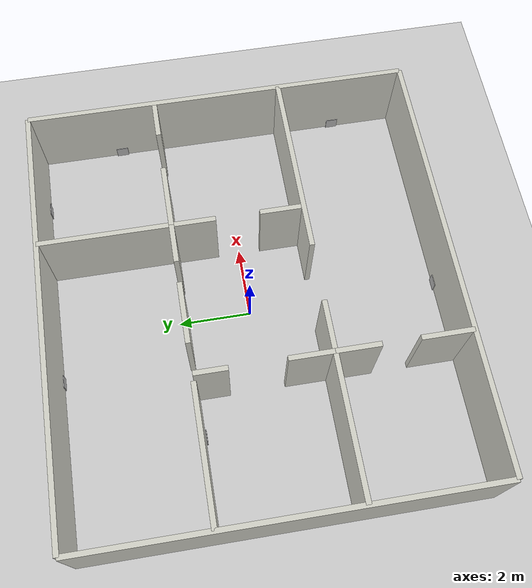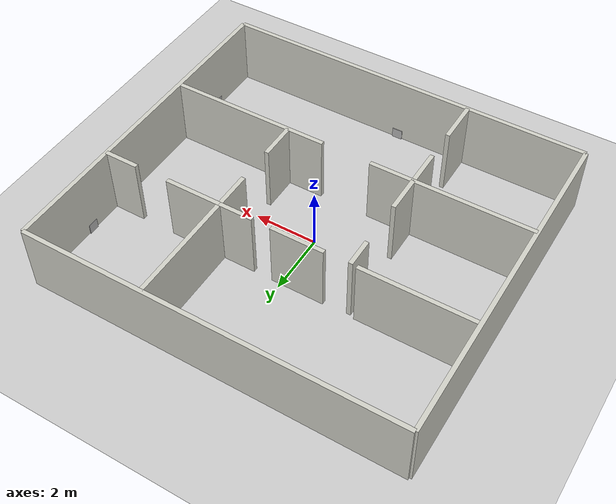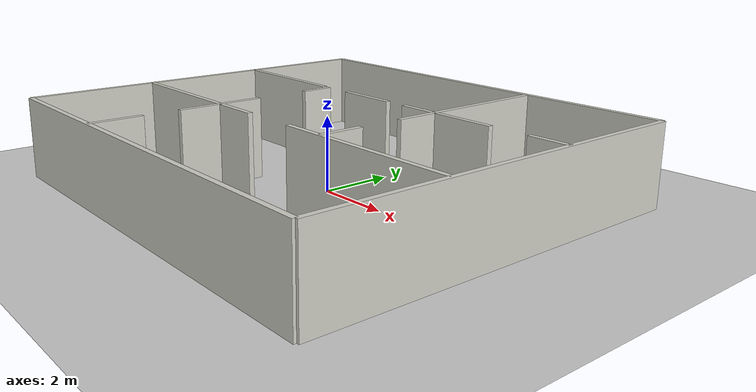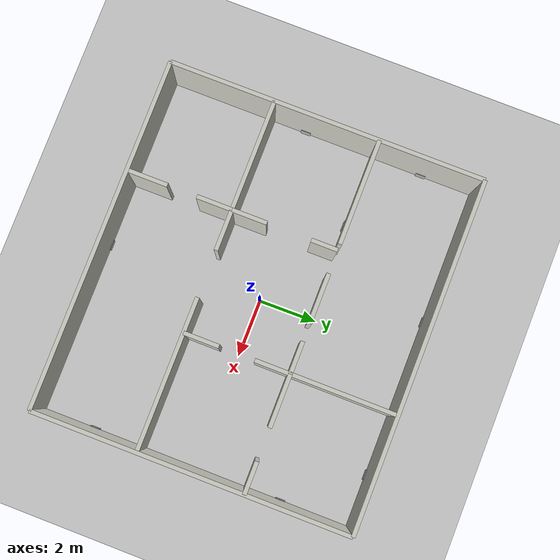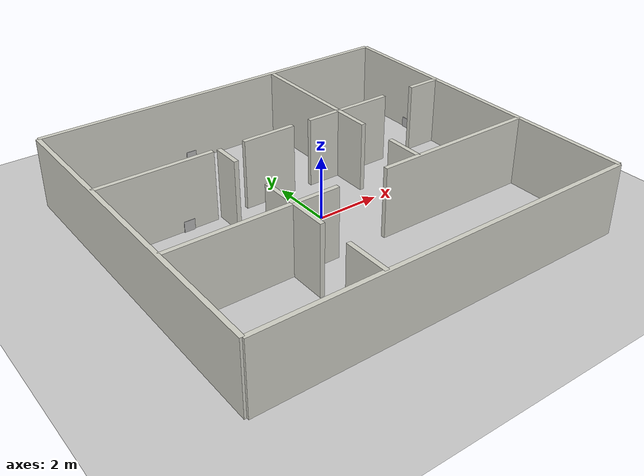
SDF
<?xml version='1.0'?>
<sdf version='1.6'>
  <world name='event_fair_world'>
    <physics type='ode'>
      <real_time_update_rate>1000</real_time_update_rate>
      <max_step_size>0.001</max_step_size>
    </physics>

    <include>
      <uri>model://sun</uri>
    </include>

    <include>
      <uri>model://ground_plane</uri>
    </include>

    <model name='event_fair_building'>
      <static>true</static>
      <link name='outer_north'>
        <pose>0 5.4 1.1 0 0 0</pose>
        <collision name='collision'>
          <geometry>
            <box><size>12 0.14 2.2</size></box>
          </geometry>
        </collision>
        <visual name='visual'>
          <geometry>
            <box><size>12 0.14 2.2</size></box>
          </geometry>
          <material>
            <ambient>0.82 0.82 0.78 1</ambient>
            <diffuse>0.82 0.82 0.78 1</diffuse>
          </material>
        </visual>
      </link>
      <link name='outer_south'>
        <pose>0 -5.4 1.1 0 0 0</pose>
        <collision name='collision'>
          <geometry>
            <box><size>12 0.14 2.2</size></box>
          </geometry>
        </collision>
        <visual name='visual'>
          <geometry>
            <box><size>12 0.14 2.2</size></box>
          </geometry>
          <material>
            <ambient>0.82 0.82 0.78 1</ambient>
            <diffuse>0.82 0.82 0.78 1</diffuse>
          </material>
        </visual>
      </link>
      <link name='outer_west'>
        <pose>-6 0 1.1 0 0 0</pose>
        <collision name='collision'>
          <geometry>
            <box><size>0.14 10.8 2.2</size></box>
          </geometry>
        </collision>
        <visual name='visual'>
          <geometry>
            <box><size>0.14 10.8 2.2</size></box>
          </geometry>
          <material>
            <ambient>0.82 0.82 0.78 1</ambient>
            <diffuse>0.82 0.82 0.78 1</diffuse>
          </material>
        </visual>
      </link>
      <link name='outer_east'>
        <pose>6 0 1.1 0 0 0</pose>
        <collision name='collision'>
          <geometry>
            <box><size>0.14 10.8 2.2</size></box>
          </geometry>
        </collision>
        <visual name='visual'>
          <geometry>
            <box><size>0.14 10.8 2.2</size></box>
          </geometry>
          <material>
            <ambient>0.82 0.82 0.78 1</ambient>
            <diffuse>0.82 0.82 0.78 1</diffuse>
          </material>
        </visual>
      </link>
      <link name='left_divider_bottom_lower'>
        <pose>-2.2 -4.7 1.1 0 0 0</pose>
        <collision name='collision'>
          <geometry>
            <box><size>0.14 1.4 2.2</size></box>
          </geometry>
        </collision>
        <visual name='visual'>
          <geometry>
            <box><size>0.14 1.4 2.2</size></box>
          </geometry>
          <material>
            <ambient>0.82 0.82 0.78 1</ambient>
            <diffuse>0.82 0.82 0.78 1</diffuse>
          </material>
        </visual>
      </link>
      <link name='left_divider_bottom_upper'>
        <pose>-2.2 -2.4 1.1 0 0 0</pose>
        <collision name='collision'>
          <geometry>
            <box><size>0.14 1.2 2.2</size></box>
          </geometry>
        </collision>
        <visual name='visual'>
          <geometry>
            <box><size>0.14 1.2 2.2</size></box>
          </geometry>
          <material>
            <ambient>0.82 0.82 0.78 1</ambient>
            <diffuse>0.82 0.82 0.78 1</diffuse>
          </material>
        </visual>
      </link>
      <link name='left_divider_middle_lower'>
        <pose>-2.2 -1.2 1.1 0 0 0</pose>
        <collision name='collision'>
          <geometry>
            <box><size>0.14 1.2 2.2</size></box>
          </geometry>
        </collision>
        <visual name='visual'>
          <geometry>
            <box><size>0.14 1.2 2.2</size></box>
          </geometry>
          <material>
            <ambient>0.82 0.82 0.78 1</ambient>
            <diffuse>0.82 0.82 0.78 1</diffuse>
          </material>
        </visual>
      </link>
      <link name='left_divider_middle_upper'>
        <pose>-2.2 1.35 1.1 0 0 0</pose>
        <collision name='collision'>
          <geometry>
            <box><size>0.14 0.9 2.2</size></box>
          </geometry>
        </collision>
        <visual name='visual'>
          <geometry>
            <box><size>0.14 0.9 2.2</size></box>
          </geometry>
          <material>
            <ambient>0.82 0.82 0.78 1</ambient>
            <diffuse>0.82 0.82 0.78 1</diffuse>
          </material>
        </visual>
      </link>
      <link name='right_divider_middle_lower'>
        <pose>2 -1.2 1.1 0 0 0</pose>
        <collision name='collision'>
          <geometry>
            <box><size>0.14 1.2 2.2</size></box>
          </geometry>
        </collision>
        <visual name='visual'>
          <geometry>
            <box><size>0.14 1.2 2.2</size></box>
          </geometry>
          <material>
            <ambient>0.82 0.82 0.78 1</ambient>
            <diffuse>0.82 0.82 0.78 1</diffuse>
          </material>
        </visual>
      </link>
      <link name='right_divider_middle_upper'>
        <pose>2 1.2 1.1 0 0 0</pose>
        <collision name='collision'>
          <geometry>
            <box><size>0.14 1.2 2.2</size></box>
          </geometry>
        </collision>
        <visual name='visual'>
          <geometry>
            <box><size>0.14 1.2 2.2</size></box>
          </geometry>
          <material>
            <ambient>0.82 0.82 0.78 1</ambient>
            <diffuse>0.82 0.82 0.78 1</diffuse>
          </material>
        </visual>
      </link>
      <link name='right_divider_top_solid'>
        <pose>2 3.6 1.1 0 0 0</pose>
        <collision name='collision'>
          <geometry>
            <box><size>0.14 3.6 2.2</size></box>
          </geometry>
        </collision>
        <visual name='visual'>
          <geometry>
            <box><size>0.14 3.6 2.2</size></box>
          </geometry>
          <material>
            <ambient>0.82 0.82 0.78 1</ambient>
            <diffuse>0.82 0.82 0.78 1</diffuse>
          </material>
        </visual>
      </link>
      <link name='south_divider_left_solid'>
        <pose>-4.1 -1.8 1.1 0 0 0</pose>
        <collision name='collision'>
          <geometry>
            <box><size>3.8 0.14 2.2</size></box>
          </geometry>
        </collision>
        <visual name='visual'>
          <geometry>
            <box><size>3.8 0.14 2.2</size></box>
          </geometry>
          <material>
            <ambient>0.82 0.82 0.78 1</ambient>
            <diffuse>0.82 0.82 0.78 1</diffuse>
          </material>
        </visual>
      </link>
      <link name='south_divider_center_left'>
        <pose>-1.5 -1.8 1.1 0 0 0</pose>
        <collision name='collision'>
          <geometry>
            <box><size>1.4 0.14 2.2</size></box>
          </geometry>
        </collision>
        <visual name='visual'>
          <geometry>
            <box><size>1.4 0.14 2.2</size></box>
          </geometry>
          <material>
            <ambient>0.82 0.82 0.78 1</ambient>
            <diffuse>0.82 0.82 0.78 1</diffuse>
          </material>
        </visual>
      </link>
      <link name='south_divider_center_right'>
        <pose>3.4 -1.8 1.1 0 0 0</pose>
        <collision name='collision'>
          <geometry>
            <box><size>5.2 0.14 2.2</size></box>
          </geometry>
        </collision>
        <visual name='visual'>
          <geometry>
            <box><size>5.2 0.14 2.2</size></box>
          </geometry>
          <material>
            <ambient>0.82 0.82 0.78 1</ambient>
            <diffuse>0.82 0.82 0.78 1</diffuse>
          </material>
        </visual>
      </link>
      <link name='north_divider_left'>
        <pose>-4.2 1.8 1.1 0 0 0</pose>
        <collision name='collision'>
          <geometry>
            <box><size>3.6 0.14 2.2</size></box>
          </geometry>
        </collision>
        <visual name='visual'>
          <geometry>
            <box><size>3.6 0.14 2.2</size></box>
          </geometry>
          <material>
            <ambient>0.82 0.82 0.78 1</ambient>
            <diffuse>0.82 0.82 0.78 1</diffuse>
          </material>
        </visual>
      </link>
      <link name='north_divider_center_left'>
        <pose>-0.55 1.8 1.1 0 0 0</pose>
        <collision name='collision'>
          <geometry>
            <box><size>1.7 0.14 2.2</size></box>
          </geometry>
        </collision>
        <visual name='visual'>
          <geometry>
            <box><size>1.7 0.14 2.2</size></box>
          </geometry>
          <material>
            <ambient>0.82 0.82 0.78 1</ambient>
            <diffuse>0.82 0.82 0.78 1</diffuse>
          </material>
        </visual>
      </link>
      <link name='north_divider_center_right'>
        <pose>1.45 1.8 1.1 0 0 0</pose>
        <collision name='collision'>
          <geometry>
            <box><size>1.1 0.14 2.2</size></box>
          </geometry>
        </collision>
        <visual name='visual'>
          <geometry>
            <box><size>1.1 0.14 2.2</size></box>
          </geometry>
          <material>
            <ambient>0.82 0.82 0.78 1</ambient>
            <diffuse>0.82 0.82 0.78 1</diffuse>
          </material>
        </visual>
      </link>
      <link name='north_divider_right_left'>
        <pose>2.9 1.8 1.1 0 0 0</pose>
        <collision name='collision'>
          <geometry>
            <box><size>1.8 0.14 2.2</size></box>
          </geometry>
        </collision>
        <visual name='visual'>
          <geometry>
            <box><size>1.8 0.14 2.2</size></box>
          </geometry>
          <material>
            <ambient>0.82 0.82 0.78 1</ambient>
            <diffuse>0.82 0.82 0.78 1</diffuse>
          </material>
        </visual>
      </link>
      <link name='north_divider_right_right'>
        <pose>5.45 1.8 1.1 0 0 0</pose>
        <collision name='collision'>
          <geometry>
            <box><size>1.1 0.14 2.2</size></box>
          </geometry>
        </collision>
        <visual name='visual'>
          <geometry>
            <box><size>1.1 0.14 2.2</size></box>
          </geometry>
          <material>
            <ambient>0.82 0.82 0.78 1</ambient>
            <diffuse>0.82 0.82 0.78 1</diffuse>
          </material>
        </visual>
      </link>
    </model>

    <include>
      <uri>model://aruco_marker_11</uri>
      <name>aruco_marker_11</name>
      <pose>-1.25 5.3 0.17 0 0 0</pose>
    </include>
    <include>
      <uri>model://aruco_marker_12</uri>
      <name>aruco_marker_12</name>
      <pose>-5.9 3.55 0.17 0 0 1.571</pose>
    </include>
    <include>
      <uri>model://aruco_marker_21</uri>
      <name>aruco_marker_21</name>
      <pose>-5.9 -0.6 0.17 0 0 1.571</pose>
    </include>
    <include>
      <uri>model://aruco_marker_22</uri>
      <name>aruco_marker_22</name>
      <pose>-3.35 1.7 0.17 0 0 0</pose>
    </include>
    <include>
      <uri>model://aruco_marker_31</uri>
      <name>aruco_marker_31</name>
      <pose>0.05 -5.3 0.17 0 0 0</pose>
    </include>
    <include>
      <uri>model://aruco_marker_32</uri>
      <name>aruco_marker_32</name>
      <pose>5.9 -3.55 0.17 0 0 1.571</pose>
    </include>
    <include>
      <uri>model://aruco_marker_41</uri>
      <name>aruco_marker_41</name>
      <pose>5.9 3 0.17 0 0 1.571</pose>
    </include>
    <include>
      <uri>model://aruco_marker_42</uri>
      <name>aruco_marker_42</name>
      <pose>4.15 5.3 0.17 0 0 0</pose>
    </include>
  </world>
</sdf>

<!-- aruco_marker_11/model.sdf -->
<sdf version='1.6'>
  <model name='aruco_marker_11'>
    <static>true</static>
    <link name='marker_link'>
      <visual name='marker_visual'>
        <geometry>
          <box>
            <size>0.34 0.02 0.34</size>
          </box>
        </geometry>
        <material>
          <script>
            <uri>model://aruco_marker_11/materials/scripts</uri>
            <uri>model://aruco_marker_11/materials/textures</uri>
            <name>Aruco/Marker11</name>
          </script>
        </material>
      </visual>
    </link>
  </model>
</sdf>

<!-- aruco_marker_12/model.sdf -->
<sdf version='1.6'>
  <model name='aruco_marker_12'>
    <static>true</static>
    <link name='marker_link'>
      <visual name='marker_visual'>
        <geometry>
          <box>
            <size>0.34 0.02 0.34</size>
          </box>
        </geometry>
        <material>
          <script>
            <uri>model://aruco_marker_12/materials/scripts</uri>
            <uri>model://aruco_marker_12/materials/textures</uri>
            <name>Aruco/Marker12</name>
          </script>
        </material>
      </visual>
    </link>
  </model>
</sdf>

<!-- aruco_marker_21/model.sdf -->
<sdf version='1.6'>
  <model name='aruco_marker_21'>
    <static>true</static>
    <link name='marker_link'>
      <visual name='marker_visual'>
        <geometry>
          <box>
            <size>0.34 0.02 0.34</size>
          </box>
        </geometry>
        <material>
          <script>
            <uri>model://aruco_marker_21/materials/scripts</uri>
            <uri>model://aruco_marker_21/materials/textures</uri>
            <name>Aruco/Marker21</name>
          </script>
        </material>
      </visual>
    </link>
  </model>
</sdf>

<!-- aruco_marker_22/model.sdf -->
<sdf version='1.6'>
  <model name='aruco_marker_22'>
    <static>true</static>
    <link name='marker_link'>
      <visual name='marker_visual'>
        <geometry>
          <box>
            <size>0.34 0.02 0.34</size>
          </box>
        </geometry>
        <material>
          <script>
            <uri>model://aruco_marker_22/materials/scripts</uri>
            <uri>model://aruco_marker_22/materials/textures</uri>
            <name>Aruco/Marker22</name>
          </script>
        </material>
      </visual>
    </link>
  </model>
</sdf>

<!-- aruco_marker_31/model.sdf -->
<sdf version='1.6'>
  <model name='aruco_marker_31'>
    <static>true</static>
    <link name='marker_link'>
      <visual name='marker_visual'>
        <geometry>
          <box>
            <size>0.34 0.02 0.34</size>
          </box>
        </geometry>
        <material>
          <script>
            <uri>model://aruco_marker_31/materials/scripts</uri>
            <uri>model://aruco_marker_31/materials/textures</uri>
            <name>Aruco/Marker31</name>
          </script>
        </material>
      </visual>
    </link>
  </model>
</sdf>

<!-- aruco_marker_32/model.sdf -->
<sdf version='1.6'>
  <model name='aruco_marker_32'>
    <static>true</static>
    <link name='marker_link'>
      <visual name='marker_visual'>
        <geometry>
          <box>
            <size>0.34 0.02 0.34</size>
          </box>
        </geometry>
        <material>
          <script>
            <uri>model://aruco_marker_32/materials/scripts</uri>
            <uri>model://aruco_marker_32/materials/textures</uri>
            <name>Aruco/Marker32</name>
          </script>
        </material>
      </visual>
    </link>
  </model>
</sdf>

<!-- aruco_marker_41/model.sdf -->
<sdf version='1.6'>
  <model name='aruco_marker_41'>
    <static>true</static>
    <link name='marker_link'>
      <visual name='marker_visual'>
        <geometry>
          <box>
            <size>0.34 0.02 0.34</size>
          </box>
        </geometry>
        <material>
          <script>
            <uri>model://aruco_marker_41/materials/scripts</uri>
            <uri>model://aruco_marker_41/materials/textures</uri>
            <name>Aruco/Marker41</name>
          </script>
        </material>
      </visual>
    </link>
  </model>
</sdf>

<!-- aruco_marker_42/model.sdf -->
<sdf version='1.6'>
  <model name='aruco_marker_42'>
    <static>true</static>
    <link name='marker_link'>
      <visual name='marker_visual'>
        <geometry>
          <box>
            <size>0.34 0.02 0.34</size>
          </box>
        </geometry>
        <material>
          <script>
            <uri>model://aruco_marker_42/materials/scripts</uri>
            <uri>model://aruco_marker_42/materials/textures</uri>
            <name>Aruco/Marker42</name>
          </script>
        </material>
      </visual>
    </link>
  </model>
</sdf>
